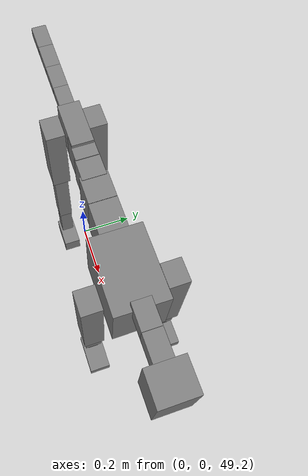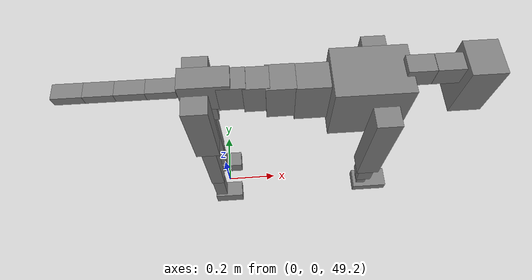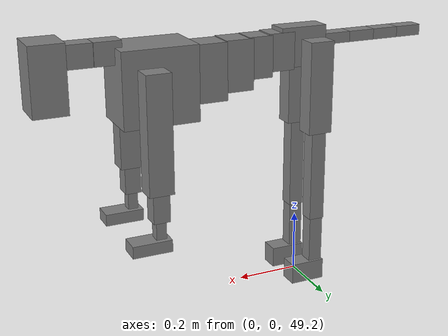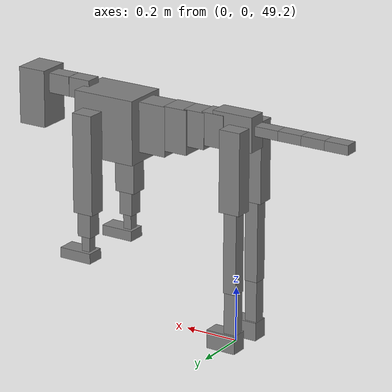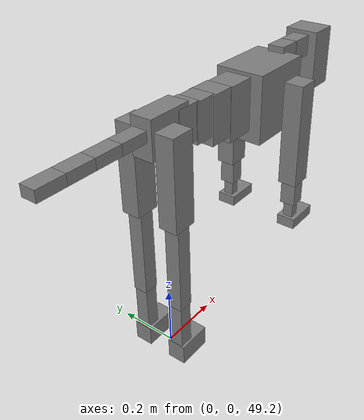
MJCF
<mujoco model="dog">

    <default>
        <joint armature="0.02" stiffness="1" damping="0.2" limited="true"/>
        <geom condim="3" friction="1 0.05 0.05" margin="0.01"/>
        <motor ctrllimited="true" ctrlrange="-1.0 1.0" forcelimited="true" gear="50"/>
    </default>

    <compiler inertiafromgeom="true" angle="radian"/>

    <option timestep="0.016" iterations="50" tolerance="1e-10" solver="Newton" jacobian="dense" cone="pyramidal"/>

    <size nconmax="20000" njmax="60000" nstack="5000000"/>
    <visual>
        <map force="0.1" zfar="30"/>
        <rgba haze="0.15 0.25 0.35 1"/>
        <quality shadowsize="2048"/>
        <global offwidth="800" offheight="800"/>
    </visual>

    <asset>
        <texture type="skybox" builtin="gradient" rgb1="0.3 0.5 0.7" rgb2="0 0 0" width="512" height="512"/>
        <texture name="texplane" type="2d" builtin="checker" rgb1=".2 .3 .4" rgb2=".1 0.15 0.2" width="512" height="512"
                 mark="cross" markrgb=".8 .8 .8"/>
        <texture name="texgeom" type="cube" builtin="flat" mark="cross" width="127" height="1278" rgb1="0.8 0.6 0.4"
                 rgb2="0.8 0.6 0.4" markrgb="1 1 1" random="0.01"/>

        <material name="matplane" reflectance="0.3" texture="texplane" texrepeat="1 1" texuniform="true"/>
        <material name="matgeom" texture="texgeom" texuniform="true" rgba="0.8 0.6 .4 1"/>
    </asset>

    <worldbody>
        <geom name="floor" pos="0 0 0" size="0 0 .25" type="plane" material="matplane" condim="3"/>

        <light directional="false" diffuse=".2 .2 .2" specular="0 0 0" pos="0 0 5" dir="0 0 -1" castshadow="false"/>
        <light mode="targetbodycom" target="torso" directional="false" diffuse=".8 .8 .8" specular="0.3 0.3 0.3"
               pos="0 0 4.0" dir="0 0 -1"/>

        <body name="root" pos="0 0 50">
            <freejoint name="root_1"/>
            <geom type="box" pos="0 0 -0.02" size="0.0774  0.0358  0.063" density="2030"/>

            <body name="spine1" pos="0.054 0 0">
                <joint name="spine1_y" axis="0 1 0" range="0 0.7" limited="true"/>
                <geom type="box" pos="0.02375 0 -0.03" size="0.04375  0.0375  0.05985" density="2030"/>

                <body name="spine2" pos="0.0612 0 0">
                    <joint name="spine2_y" axis="0 1 0" range="-0.15 0.15" limited="true"/>
                    <geom type="box" pos="0.03555  0  -0.04" size="0.04055  0.039  0.06615" density="2030"/>

                    <body name="spine3" pos="0.0730 0 0">
                        <joint name="spine3_y" axis="0 1 0" range="-0.15 0.15" limited="true"/>
                        <geom type="box" pos="0.03555  0  -0.057" size="0.04555  0.0445  0.081" density="2030"/>

                        <body name="spine4" pos="0.0780 0 0">
                            <joint name="spine4_y" axis="0 1 0" range="-0.15 0.15" limited="true"/>
                            <geom type="box" pos="0.05265  0  -0.07" size="0.05265  0.045  0.09135" density="2030"/>

                            <body name="torso" pos="0.1082 0 0">
                                <joint name="torso_y" axis="0 1 0" range="-0.15 0.15" limited="true"/>
                                <geom type="box" pos="0.11925  0  -0.085" size="0.11925  0.085  0.11745"
                                      density="2030"/>

                                <body name="neck1" pos="0.2160  0   0.0180">
                                    <joint name="neck1_y" axis="0 1 0" range="-1.2  -1" limited="true"/>
                                    <geom type="box" pos="0.0423  0  0" size="0.0423  0.03  0.036" density="2325"/>

                                    <body name="neck2" pos="0.0853  0  0">
                                        <joint name="neck2_y" axis="0 1 0" range="0.1  0" limited="true"/>
                                        <geom type="box" pos="0.0423  0  0" size="0.0423  0.03  0.036" density="2325"/>

                                        <body name="head" pos="0.0853  0  0">
                                            <joint name="head_y" axis="0 1 0" range="-0.3  -0.2" limited="true"/>
                                            <geom type="box" pos="0.0531  0  -0.055" size="0.0531  0.06  0.1044"
                                                  density="4030"/>

                                        </body>
                                    </body>
                                </body>

                                <body name="front_shoulder" pos="0.156  0   -0.0480">
                                    <joint name="front_shoulder_y" axis="0 1 0" range="-1 1.5" limited="true"/>
                                    <geom type="box" pos="0 0.13 -0.1564" size="0.0390  0.0333  0.1830" density="1158"/>
                                    <geom type="box" pos="0 -0.13 -0.1564" size="0.0390  0.0333  0.1830"
                                          density="1158"/>

                                    <body name="front_elbow" pos="0  0  -0.3127">
                                        <joint name="front_elbow_y" axis="0 1 0" range="-2 0" limited="true"/>
                                        <geom type="box" pos="0 0.13 -0.0570" size="0.0264  0.0270  0.0570"
                                              density="1081"/>
                                        <geom type="box" pos="0 -0.13 -0.0570" size="0.0264  0.0270  0.0570"
                                              density="1081"/>

                                        <body name="front_wrist" pos="0  0  -0.1140">
                                            <joint name="front_wrist_y" axis="0 1 0" range="-0.2 0" limited="true"/>
                                            <geom type="box" pos="0 0.13 -0.0355" size="0.0162  0.0180  0.0486"
                                                  density="1664"/>
                                            <geom type="box" pos="0 -0.13 -0.0355" size="0.0162  0.0180  0.0486"
                                                  density="1664"/>

                                            <body name="front_finger_end" pos="0  0  -0.0710">
                                                <joint name="front_finger_y" axis="0 1 0" range="-0.4 1"
                                                       limited="true"/>
                                                <geom type="box" pos="0.0340  0.13  -0.0041"
                                                      size="0.0624  0.0340  0.0191" density="1515"/>
                                                <geom type="box" pos="0.0340  -0.13  -0.0041"
                                                      size="0.0624  0.0340  0.0191" density="1515"/>

                                            </body>

                                        </body>
                                    </body>
                                </body>

                            </body>
                        </body>
                    </body>
                </body>
            </body>

            <body name="back_hip" pos="-0.03 0 -0.018">
                <joint name="back_hip_y" axis="0 1 0" range="-1.5 0.3" limited="true"/>
                <geom type="box" pos="0 0.07 -0.1257" size="0.0401  0.0314  0.1485" density="1154"/>
                <geom type="box" pos="0 -0.07 -0.1257" size="0.0401  0.0314  0.1485" density="1154"/>

                <body name="back_knee" pos="0  0  -0.2513">
                    <joint name="back_knee_y" axis="0 1 0" range="0 2.8" limited="true"/>
                    <geom type="box" pos="0 0.07 -0.1512" size="0.0250  0.0246  0.1668" density="1227"/>
                    <geom type="box" pos="0 -0.07 -0.1512" size="0.0250  0.0246  0.1668" density="1227"/>

                    <body name="back_ankle" pos="0  0  -0.3024">
                        <joint name="back_ankle_y" axis="0 1 0" range="-2.2 0" limited="true"/>
                        <geom type="box" pos="0 0.07 -0.0902" size="0.0226  0.0226  0.1015" density="1284"/>
                        <geom type="box" pos="0 -0.07 -0.0902" size="0.0226  0.0226  0.1015" density="1284"/>

                        <body name="back_toe_end" pos="0  0  -0.1804">
                            <joint name="back_toe_y" axis="0 1 0" range="-0.4 1" limited="true"/>
                            <geom type="box" pos="0.0309  0.07  -0.0187" size="0.0566  0.0309  0.0337" density="1515"/>
                            <geom type="box" pos="0.0309  -0.07  -0.0187" size="0.0566  0.0309  0.0337" density="1515"/>

                        </body>
                    </body>
                </body>
            </body>

            <body name="tail1" pos="-0.074 0 -0.006">
                <joint name="tail1_y" axis="0 1 0" range="-0.2 0.2" limited="true"/>
                <geom type="box" pos="-0.0536  0  0" size="0.045  0.025  0.0175" density="1587"/>

                <body name="tail2" pos="-0.09 0 0">
                    <joint name="tail2_y" axis="0 1 0" range="-0.2 0.2" limited="true"/>
                    <geom type="box" pos="-0.0536  0  0" size="0.045  0.025  0.0175" density="1587"/>

                    <body name="tail3" pos="-0.09 0 0">
                        <joint name="tail3_y" axis="0 1 0" range="-0.2 0.2" limited="true"/>
                        <geom type="box" pos="-0.0536  0  0" size="0.045  0.025  0.0175" density="1587"/>

                        <body name="tail4" pos="-0.09 0 0">
                            <joint name="tail4_y" axis="0 1 0" range="-0.2 0.2" limited="true"/>
                            <geom type="box" pos="-0.0536  0  0" size="0.045  0.025  0.0175" density="1587"/>

                        </body>
                    </body>
                </body>
            </body>
        </body>
    </worldbody>

    <actuator>
        <motor joint="spine1_y" forcerange="-150 150     "/>
        <motor joint="spine2_y" forcerange="-150 150     "/>
        <motor joint="spine3_y" forcerange="-150 150     "/>
        <motor joint="spine4_y" forcerange="-150 150     "/>
        <motor joint="torso_y" forcerange="-150 150     "/>
        <motor joint="neck1_y" forcerange="-100 100       "/>
        <motor joint="neck2_y" forcerange="-100 100       "/>
        <motor joint="head_y" forcerange="-150 150       "/>
        <motor joint="front_shoulder_y" forcerange="-193.34 128.72"/>
        <motor joint="front_elbow_y" forcerange="-174.51 122.12"/>
        <motor joint="front_wrist_y" forcerange="-79.71 64.25"/>
        <motor joint="front_finger_y" forcerange="-92.02 49.58"/>
        <motor joint="back_hip_y" forcerange="-341.75 277.16"/>
        <motor joint="back_knee_y" forcerange="-301.62 256.89"/>
        <motor joint="back_angle_y" forcerange="-199.51 62.36"/>
        <motor joint="back_toe_y" forcerange="-50.88 116.00"/>
        <motor joint="tail1_y" forcerange="-50 50     "/>
        <motor joint="tail2_y" forcerange="-50 50     "/>
        <motor joint="tail3_y" forcerange="-50 50     "/>
        <motor joint="tail4_y" forcerange="-50 50     "/>
    </actuator>
</mujoco>
